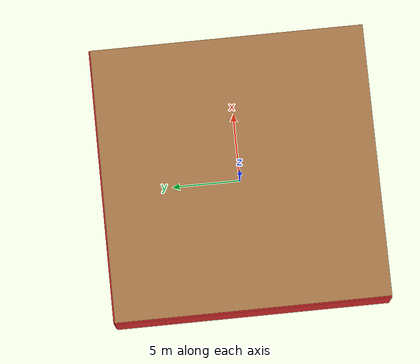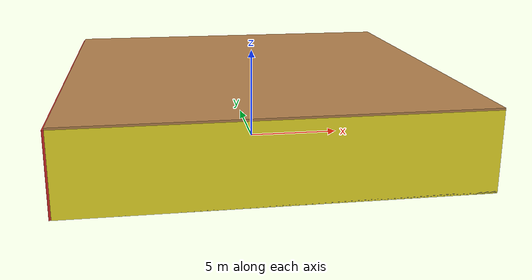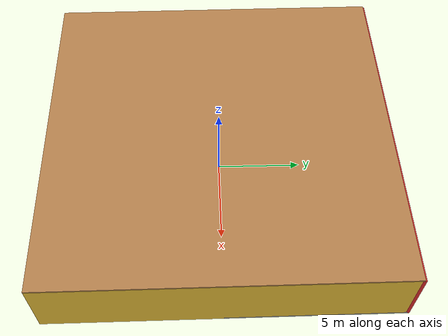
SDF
<sdf version="1.4">
 <world name="default">
  <physics type="ode">
   <max_step_size>0.001</max_step_size>
   <real_time_factor>1</real_time_factor>
   <real_time_update_rate>1000</real_time_update_rate>
   <gravity>0 0 -9.8</gravity>
  </physics>
  <scene><ambient>0.4 0.4 0.4 1</ambient><background>0.7 0.7 0.7 1</background><shadows>1</shadows></scene>
  <model name="Surrounding">
   <static>1</static>
   <link name="Ceiling">
    <collision name="Ceiling_Collision"><geometry><box><size>20 20 0.1</size></box></geometry></collision>
    <visual name="Ceiling_Visual">
     <geometry><box><size>20 20 0.1</size></box></geometry>
     <material>
      <script><uri>file://media/materials/scripts/gazebo.material</uri><name>Gazebo/WoodFloor</name></script>
     </material>
    </visual>
    <pose>0 0 4.05 0 0 0</pose>
   </link>
   <link name="Wall_South">
    <collision name="Wall_South_Collision">
     <geometry><box><size>20 0 4</size></box></geometry>
     <pose>0 0 2 0 -0 0</pose>
    </collision>
    <visual name="Wall_South_Visual">
     <pose>0 0 2 0 -0 0</pose>
     <geometry><box><size>20 0 4</size></box></geometry>
     <material>
      <script><uri>file://media/materials/scripts/gazebo.material</uri><name>Gazebo/YellowGlow</name></script>
     </material>
    </visual>
    <velocity_decay><linear>0</linear><angular>0</angular></velocity_decay>
    <pose>0 -10 0 0 -0 0</pose>
   </link>
   <link name="Wall_East">
    <collision name="Wall_21_Collision">
     <geometry><box><size>20 0 4</size></box></geometry>
     <pose>0 0 2 0 -0 0</pose>
    </collision>
    <visual name="Wall_21_Visual">
     <pose>0 0 2 0 -0 0</pose>
     <geometry><box><size>20 0 4</size></box></geometry>
     <material>
      <script><uri>file://media/materials/scripts/gazebo.material</uri><name>Gazebo/Gold</name></script>
     </material>
    </visual>
    <velocity_decay><linear>0</linear><angular>0</angular></velocity_decay>
    <pose>10 0 0 0 -0 1.5708</pose>
   </link>
   <link name="Wall_North">
    <collision name="Wall_22_Collision">
     <geometry><box><size>20 0.2 4</size></box></geometry>
     <pose>0 0 2 0 -0 0</pose>
    </collision>
    <visual name="Wall_22_Visual">
     <pose>0 0 2 0 -0 0</pose>
     <geometry><box><size>20 0.2 4</size></box></geometry>
     <material>
      <script><uri>file://media/materials/scripts/gazebo.material</uri><name>Gazebo/RedGlow</name></script>
     </material>
    </visual>
    <velocity_decay><linear>0</linear><angular>0</angular></velocity_decay>
    <pose>0 10 0 0 -0 0</pose>
   </link>
   <link name="Wall_West">
    <collision name="Wall_23_Collision">
     <geometry><box><size>20 0.2 4</size></box></geometry>
     <pose>0 0 2 0 -0 0</pose>
    </collision>
    <visual name="Wall_23_Visual">
     <pose>0 0 2 0 -0 0</pose>
     <geometry><box><size>20 0.2 4</size></box></geometry>
     <material>
      <script><uri>file://media/materials/scripts/gazebo.material</uri><name>Gazebo/RedBright</name></script>
     </material>
    </visual>
    <velocity_decay><linear>0</linear><angular>0</angular></velocity_decay>
    <pose>-10 0 0 0 0 -1.5708</pose>
   </link>
   <link name="Ground_link">
    <collision name="collision">
     <pose>0 0 .05 0 -0 0</pose>
     <geometry><box><size>20 20 0.1</size></box></geometry>
    </collision>
    <visual name="visual">
     <pose>0 0 .05 0 -0 0</pose>
     <geometry><box><size>20 20 0.1</size></box></geometry>
     <material>
      <script><uri>file://media/materials/scripts/gazebo.material</uri><name>Gazebo/Grey</name></script>
     </material>
    </visual>
   </link>
   <static>1</static>
  </model>
  <spherical_coordinates>
   <surface_model>EARTH_WGS84</surface_model>
   <latitude_deg>0</latitude_deg>
   <longitude_deg>0</longitude_deg>
   <elevation>0</elevation>
   <heading_deg>0</heading_deg>
  </spherical_coordinates>
  <light name="lightball_0" type="diffuse">
   <diffuse>0.8 0.8 0.8 1</diffuse>
   <specular>0.2 0.2 0.2 1</specular>
   <attenuation>
    <range>100</range>
    <constant>0.7</constant>
    <linear>0.01</linear>
    <quadratic>0.001</quadratic>
   </attenuation>
   <direction>-0.5 0.1 -0.9</direction>
   <pose>-9.14014148804 1.72547966597 1.32582079411 0 0 0</pose>
  </light>
  <light name="lightball_1" type="diffuse">
   <diffuse>0.8 0.8 0.8 1</diffuse>
   <specular>0.2 0.2 0.2 1</specular>
   <attenuation>
    <range>100</range>
    <constant>0.7</constant>
    <linear>0.01</linear>
    <quadratic>0.001</quadratic>
   </attenuation>
   <direction>-0.5 0.1 -0.9</direction>
   <pose>-8.21887633076 -2.34432727789 2.5824870842 0 0 0</pose>
  </light>
  <light name="lightball_2" type="diffuse">
   <diffuse>0.8 0.8 0.8 1</diffuse>
   <specular>0.2 0.2 0.2 1</specular>
   <attenuation>
    <range>100</range>
    <constant>0.7</constant>
    <linear>0.01</linear>
    <quadratic>0.001</quadratic>
   </attenuation>
   <direction>-0.5 0.1 -0.9</direction>
   <pose>5.199414372 -0.771475545907 3.54834774959 0 0 0</pose>
  </light>
  <light name="lightball_3" type="diffuse">
   <diffuse>0.8 0.8 0.8 1</diffuse>
   <specular>0.2 0.2 0.2 1</specular>
   <attenuation>
    <range>100</range>
    <constant>0.7</constant>
    <linear>0.01</linear>
    <quadratic>0.001</quadratic>
   </attenuation>
   <direction>-0.5 0.1 -0.9</direction>
   <pose>-2.11724107096 -1.75585898976 2.27129532703 0 0 0</pose>
  </light>
  <light name="lightball_4" type="diffuse">
   <diffuse>0.8 0.8 0.8 1</diffuse>
   <specular>0.2 0.2 0.2 1</specular>
   <attenuation>
    <range>100</range>
    <constant>0.7</constant>
    <linear>0.01</linear>
    <quadratic>0.001</quadratic>
   </attenuation>
   <direction>-0.5 0.1 -0.9</direction>
   <pose>-2.28141873723 4.05178835622 1.07617805218 0 0 0</pose>
  </light>
  <light name="lightball_5" type="diffuse">
   <diffuse>0.8 0.8 0.8 1</diffuse>
   <specular>0.2 0.2 0.2 1</specular>
   <attenuation>
    <range>100</range>
    <constant>0.7</constant>
    <linear>0.01</linear>
    <quadratic>0.001</quadratic>
   </attenuation>
   <direction>-0.5 0.1 -0.9</direction>
   <pose>6.05478252174 -8.04287377316 3.70566515697 0 0 0</pose>
  </light>
  <light name="lightball_6" type="diffuse">
   <diffuse>0.8 0.8 0.8 1</diffuse>
   <specular>0.2 0.2 0.2 1</specular>
   <attenuation>
    <range>100</range>
    <constant>0.7</constant>
    <linear>0.01</linear>
    <quadratic>0.001</quadratic>
   </attenuation>
   <direction>-0.5 0.1 -0.9</direction>
   <pose>5.01044351807 2.200874426 3.36164658818 0 0 0</pose>
  </light>
  <include><uri>model://table</uri><pose>-6.46624795035 -5.14790998232 0 0 0 0.381158377336</pose></include>
  <include><uri>model://table</uri><pose>-5.43371961165 -7.22571832923 0 0 0 1.80275672667</pose></include>
  <include>
   <uri>model://construction_cone</uri>
   <pose>-0.31570036074 3.7033430254 0 0 0 1.73840359801</pose>
  </include>
  <include>
   <uri>model://construction_cone</uri>
   <pose>-2.56952027911 8.57503001061 0 0 0 1.98834636801</pose>
  </include>
  <include><uri>model://cabinet</uri><pose>0.586176548659 -7.18184345418 0 0 0 0.899806999582</pose></include>
  <include><uri>model://cabinet</uri><pose>4.3403928519 -2.6395830941 0 0 0 0.611457500077</pose></include>
  <include><uri>model://cabinet</uri><pose>8.26315225409 -6.46643491894 0 0 0 0.645543045034</pose></include>
  <include><uri>model://table</uri><pose>8.58904381118 0.771230819468 0 0 0 0.513134721925</pose></include>
 </world>
</sdf>

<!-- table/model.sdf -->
<sdf version="1.5">
  <model name="table">
    <static>true</static>
    <link name="link">
      <collision name="surface">
        <pose>0 0 1.0 0 0 0</pose>
        <geometry>
          <box>
            <size>1.5 0.8 0.03</size>
          </box>
        </geometry>
        <surface>
          <friction>
            <ode>
              <mu>0.6</mu>
              <mu2>0.6</mu2>
            </ode>
          </friction>
        </surface>
      </collision>
      <visual name="visual1">
        <pose>0 0 1.0 0 0 0</pose>
        <geometry>
          <box>
            <size>1.5 0.8 0.03</size>
          </box>
        </geometry>
        <material>
          <script>
            <uri>model://media/materials/scripts/gazebo.material</uri>
            <name>Gazebo/Wood</name>
          </script>
        </material>
      </visual>
      <collision name="front_left_leg">
        <pose>0.68 0.38 0.5 0 0 0</pose>
        <geometry>
          <cylinder>
            <radius>0.02</radius>
            <length>1.0</length>
          </cylinder>
        </geometry>
      </collision>
      <visual name="front_left_leg">
        <pose>0.68 0.38 0.5 0 0 0</pose>
        <geometry>
          <cylinder>
            <radius>0.02</radius>
            <length>1.0</length>
          </cylinder>
        </geometry>
        <material>
          <script>
            <uri>model://media/materials/scripts/gazebo.material</uri>
            <name>Gazebo/Grey</name>
          </script>
        </material>
      </visual>
      <collision name="front_right_leg">
        <pose>0.68 -0.38 0.5 0 0 0</pose>
        <geometry>
          <cylinder>
            <radius>0.02</radius>
            <length>1.0</length>
          </cylinder>
        </geometry>
      </collision>
      <visual name="front_right_leg">
        <pose>0.68 -0.38 0.5 0 0 0</pose>
        <geometry>
          <cylinder>
            <radius>0.02</radius>
            <length>1.0</length>
          </cylinder>
        </geometry>
        <material>
          <script>
            <uri>model://media/materials/scripts/gazebo.material</uri>
            <name>Gazebo/Grey</name>
          </script>
        </material>
      </visual>
      <collision name="back_right_leg">
        <pose>-0.68 -0.38 0.5 0 0 0</pose>
        <geometry>
          <cylinder>
            <radius>0.02</radius>
            <length>1.0</length>
          </cylinder>
        </geometry>
      </collision>
      <visual name="back_right_leg">
        <pose>-0.68 -0.38 0.5 0 0 0</pose>
        <geometry>
          <cylinder>
            <radius>0.02</radius>
            <length>1.0</length>
          </cylinder>
        </geometry>
        <material>
          <script>
            <uri>model://media/materials/scripts/gazebo.material</uri>
            <name>Gazebo/Grey</name>
          </script>
        </material>
      </visual>
      <collision name="back_left_leg">
        <pose>-0.68 0.38 0.5 0 0 0</pose>
        <geometry>
          <cylinder>
            <radius>0.02</radius>
            <length>1.0</length>
          </cylinder>
        </geometry>
      </collision>
      <visual name="back_left_leg">
        <pose>-0.68 0.38 0.5 0 0 0</pose>
        <geometry>
          <cylinder>
            <radius>0.02</radius>
            <length>1.0</length>
          </cylinder>
        </geometry>
        <material>
          <script>
            <uri>model://media/materials/scripts/gazebo.material</uri>
            <name>Gazebo/Grey</name>
          </script>
        </material>
      </visual>
    </link>
  </model>
</sdf>

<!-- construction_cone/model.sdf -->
<sdf version="1.5">
  <model name="Construction Cone">
    <link name="link">
      <collision name="collision">
        <geometry>
          <mesh>
            <scale>10 10 10</scale>
            <uri>file://isr-testbed/construction_cone/meshes/construction_cone.dae</uri>
          </mesh>
        </geometry>
      </collision>
      <visual name="visual">
        <geometry>
          <mesh>
            <scale>10 10 10</scale>
            <uri>file://isr-testbed/construction_cone/meshes/construction_cone.dae</uri>
          </mesh>
        </geometry>
      </visual>
    </link>
  </model>
</sdf>

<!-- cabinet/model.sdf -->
<sdf version="1.5">
  <model name="cabinet">
    <static>true</static>
    <link name="cabinet_bottom_plate">
      <inertial>
        <pose>0 0 -1 0 0 0</pose>
        <inertia>
          <ixx>2.050000</ixx>
          <ixy>0</ixy>
          <ixz>0</ixz>
          <iyy>2.050000</iyy>
          <iyz>0</iyz>
          <izz>2.050000</izz>
        </inertia>
        <mass>25.000000</mass>
      </inertial>
      <collision name="cabinet_bottom_plate_geom">
        <pose>0 0 0.010000 0 0 0</pose>
        <geometry>
          <box>
            <size>0.450000 0.450000 0.020000</size>
          </box>
        </geometry>
      </collision>
      <visual name="cabinet_bottom_plate_geom_visual">
        <pose>0 0 0.010000 0 0 0</pose>
        <geometry>
          <box>
            <size>0.450000 0.450000 0.020000</size>
          </box>
        </geometry>
        <material>
          <script>
            <uri>model://media/materials/scripts/gazebo.material</uri>
            <name>Gazebo/Wood</name>
          </script>
        </material>
      </visual>
      <collision name="cabinet_bottom_plate_geom_cabinet_back_plate">
        <pose>0.235000 0 0.510000 0 0 0</pose>
        <geometry>
          <box>
            <size>0.020000 0.450000 1.020000</size>
          </box>
        </geometry>
      </collision>
      <visual name="cabinet_bottom_plate_geom_cabinet_back_plate_visual">
        <pose>0.235000 0 0.510000 0 0 0</pose>
        <geometry>
          <box>
            <size>0.020000 0.450000 1.020000</size>
          </box>
        </geometry>
        <material>
          <script>
            <uri>model://media/materials/scripts/gazebo.material</uri>
            <name>Gazebo/Wood</name>
          </script>
        </material>
      </visual>
      <collision name="cabinet_bottom_plate_geom_cabinet_left_plate">
        <pose>0 0.235000 0.510000 0 0 0</pose>
        <geometry>
          <box>
            <size>0.450000 0.020000 1.020000</size>
          </box>
        </geometry>
      </collision>
      <visual name="cabinet_bottom_plate_geom_cabinet_left_plate_visual">
        <pose>0 0.235000 0.510000 0 0 0</pose>
        <geometry>
          <box>
            <size>0.450000 0.020000 1.020000</size>
          </box>
        </geometry>
        <material>
          <script>
            <uri>model://media/materials/scripts/gazebo.material</uri>
            <name>Gazebo/Wood</name>
          </script>
        </material>
      </visual>
      <collision name="cabinet_bottom_plate_geom_cabinet_middle_plate">
        <pose>0 0 0.510000 0 0 0</pose>
        <geometry>
          <box>
            <size>0.450000 0.450000 0.020000</size>
          </box>
        </geometry>
      </collision>
      <visual name="cabinet_bottom_plate_geom_cabinet_middle_plate_visual">
        <pose>0 0 0.510000 0 0 0</pose>
        <geometry>
          <box>
            <size>0.450000 0.450000 0.020000</size>
          </box>
        </geometry>
        <material>
          <script>
            <uri>model://media/materials/scripts/gazebo.material</uri>
            <name>Gazebo/Wood</name>
          </script>
        </material>
      </visual>
      <collision name="cabinet_bottom_plate_geom_cabinet_right_plate">
        <pose>0 -0.235000 0.510000 0 0 0</pose>
        <geometry>
          <box>
            <size>0.450000 0.020000 1.020000</size>
          </box>
        </geometry>
      </collision>
      <visual name="cabinet_bottom_plate_geom_cabinet_right_plate_visual">
        <pose>0 -0.235000 0.510000 0 0 0</pose>
        <geometry>
          <box>
            <size>0.450000 0.020000 1.020000</size>
          </box>
        </geometry>
        <material>
          <script>
            <uri>model://media/materials/scripts/gazebo.material</uri>
            <name>Gazebo/Wood</name>
          </script>
        </material>
      </visual>
      <collision name="cabinet_bottom_plate_geom_cabinet_top_plate">
        <pose>0 0 1.010000 0 0 0</pose>
        <geometry>
          <box>
            <size>0.450000 0.450000 0.020000</size>
          </box>
        </geometry>
      </collision>
      <visual name="cabinet_bottom_plate_geom_cabinet_top_plate_visual">
        <pose>0 0 1.010000 0 0 0</pose>
        <geometry>
          <box>
            <size>0.450000 0.450000 0.020000</size>
          </box>
        </geometry>
        <material>
          <script>
            <uri>model://media/materials/scripts/gazebo.material</uri>
            <name>Gazebo/Wood</name>
          </script>
        </material>
      </visual>
    </link>
  </model>
</sdf>
